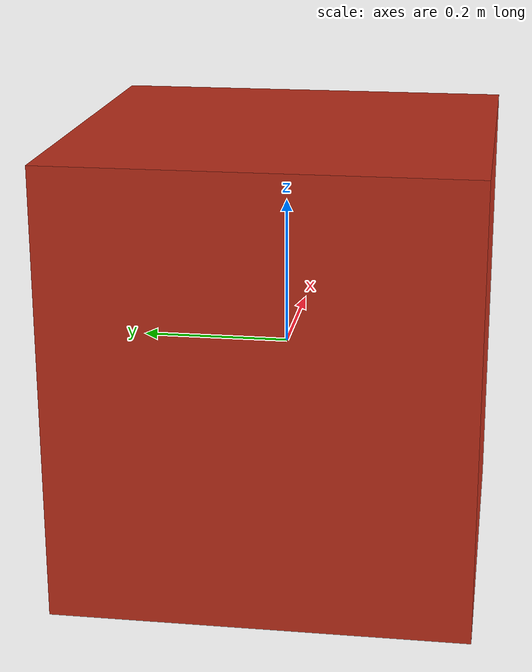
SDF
<?xml version="1.0"?>
<sdf version="1.8">
  <model name="dynamic_crate">
    <static>false</static>
    <link name="crate_link">
      <inertial>
        <mass>18.0</mass>
        <inertia>
          <ixx>0.9075</ixx><iyy>0.9075</iyy><izz>0.9075</izz>
        </inertia>
      </inertial>
      <collision name="collision">
        <geometry><box><size>0.55 0.55 0.60</size></box></geometry>
      </collision>
      <visual name="visual">
        <geometry><box><size>0.55 0.55 0.60</size></box></geometry>
        <material>
          <ambient>0.55 0.12 0.08 1</ambient>
          <diffuse>0.75 0.18 0.10 1</diffuse>
        </material>
      </visual>
    </link>
    <plugin filename="ignition-gazebo-velocity-control-system"
            name="gz::sim::systems::VelocityControl">
      <topic>/model/dynamic_crate/cmd_vel</topic>
    </plugin>
  </model>
</sdf>
